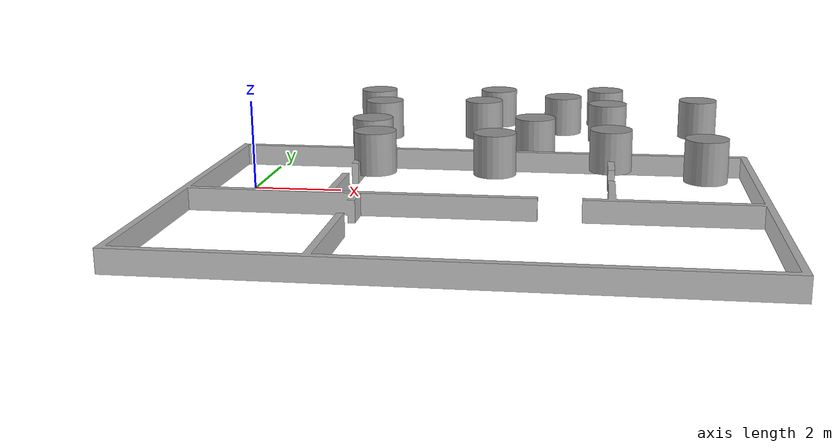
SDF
<sdf version="1.7">
 <world name="default">
  <light name="sun" type="directional">
   <pose>0 0 10 0 -0 0</pose>
   <diffuse>0.8 0.8 0.8 1</diffuse>
   <specular>0.2 0.2 0.2 1</specular>
   <attenuation>
    <range>1000</range>
    <constant>0.9</constant>
    <linear>0.01</linear>
    <quadratic>0.001</quadratic>
   </attenuation>
   <direction>-0.5 0.1 -0.9</direction>
   <spot><inner_angle>0</inner_angle><outer_angle>0</outer_angle><falloff>0</falloff></spot>
  </light>
  <model name="house">
   <frame name="house::__model__" attached_to="house::body">
    <pose relative_to="__model__">0 0 0 0 -0 0</pose>
   </frame>
   <static>1</static>
   <link name="house::body">
    <visual name="visual">
     <geometry><mesh><uri>file://models/house/meshes/house.dae</uri></mesh></geometry>
    </visual>
    <collision name="collision">
     <geometry><mesh><uri>file://models/house/meshes/house.dae</uri></mesh></geometry>
    </collision>
    <pose relative_to="house::__model__">0 0 0 0 -0 0</pose>
   </link>
   <pose>-1 -6 0 0 0 0</pose>
  </model>
  <gravity>0 0 -9.8</gravity>
  <magnetic_field>6e-06 2.3e-05 -4.2e-05</magnetic_field>
  <atmosphere type="adiabatic"/>
  <physics type="ode">
   <max_step_size>0.001</max_step_size>
   <real_time_factor>1</real_time_factor>
   <real_time_update_rate>1000</real_time_update_rate>
  </physics>
  <scene><ambient>0.4 0.4 0.4 1</ambient><background>0.7 0.7 0.7 1</background><shadows>1</shadows></scene>
  <spherical_coordinates>
   <surface_model>EARTH_WGS84</surface_model>
   <latitude_deg>0</latitude_deg>
   <longitude_deg>0</longitude_deg>
   <elevation>0</elevation>
   <heading_deg>0</heading_deg>
  </spherical_coordinates>
  <model name="unit_cylinder">
   <pose>4.96512 7.06192 0.65248 0 -0 7e-06</pose>
   <link name="link">
    <inertial>
     <mass>1</mass>
     <inertia><ixx>0.145833</ixx><ixy>0</ixy><ixz>0</ixz><iyy>0.145833</iyy><iyz>0</iyz><izz>0.125</izz></inertia>
    </inertial>
    <collision name="collision">
     <geometry><cylinder><radius>0.5</radius><length>1</length></cylinder></geometry>
    </collision>
    <visual name="visual">
     <geometry><cylinder><radius>0.5</radius><length>1</length></cylinder></geometry>
     <material>
      <script><name>Gazebo/Grey</name><uri>file://media/materials/scripts/gazebo.material</uri></script>
     </material>
    </visual>
   </link>
  </model>
  <model name="unit_cylinder_0">
   <pose>6.81801 6.17154 0.65248 0 -0 4.6e-05</pose>
   <link name="link">
    <inertial>
     <mass>1</mass>
     <inertia><ixx>0.145833</ixx><ixy>0</ixy><ixz>0</ixz><iyy>0.145833</iyy><iyz>0</iyz><izz>0.125</izz></inertia>
    </inertial>
    <collision name="collision">
     <geometry><cylinder><radius>0.5</radius><length>1</length></cylinder></geometry>
    </collision>
    <visual name="visual">
     <geometry><cylinder><radius>0.5</radius><length>1</length></cylinder></geometry>
     <material>
      <script><name>Gazebo/Grey</name><uri>file://media/materials/scripts/gazebo.material</uri></script>
     </material>
    </visual>
   </link>
  </model>
  <model name="unit_cylinder_1">
   <pose>8.09275 1.95874 0.652476 -5e-06 1e-06 4.5e-05</pose>
   <link name="link">
    <inertial>
     <mass>1</mass>
     <inertia><ixx>0.145833</ixx><ixy>0</ixy><ixz>0</ixz><iyy>0.145833</iyy><iyz>0</iyz><izz>0.125</izz></inertia>
    </inertial>
    <collision name="collision">
     <geometry><cylinder><radius>0.5</radius><length>1</length></cylinder></geometry>
    </collision>
    <visual name="visual">
     <geometry><cylinder><radius>0.5</radius><length>1</length></cylinder></geometry>
     <material>
      <script><name>Gazebo/Grey</name><uri>file://media/materials/scripts/gazebo.material</uri></script>
     </material>
    </visual>
   </link>
  </model>
  <model name="unit_cylinder_2">
   <pose>2.19671 2.73045 0.652476 -2e-06 4e-06 0</pose>
   <link name="link">
    <inertial>
     <mass>1</mass>
     <inertia><ixx>0.145833</ixx><ixy>0</ixy><ixz>0</ixz><iyy>0.145833</iyy><iyz>0</iyz><izz>0.125</izz></inertia>
    </inertial>
    <collision name="collision">
     <geometry><cylinder><radius>0.5</radius><length>1</length></cylinder></geometry>
    </collision>
    <visual name="visual">
     <geometry><cylinder><radius>0.5</radius><length>1</length></cylinder></geometry>
     <material>
      <script><name>Gazebo/Grey</name><uri>file://media/materials/scripts/gazebo.material</uri></script>
     </material>
    </visual>
   </link>
  </model>
  <model name="unit_cylinder_3">
   <pose>5.39309 1.29343 0.652477 7e-06 1e-06 9e-06</pose>
   <link name="link">
    <inertial>
     <mass>1</mass>
     <inertia><ixx>0.145833</ixx><ixy>0</ixy><ixz>0</ixz><iyy>0.145833</iyy><iyz>0</iyz><izz>0.125</izz></inertia>
    </inertial>
    <collision name="collision">
     <geometry><cylinder><radius>0.5</radius><length>1</length></cylinder></geometry>
    </collision>
    <visual name="visual">
     <geometry><cylinder><radius>0.5</radius><length>1</length></cylinder></geometry>
     <material>
      <script><name>Gazebo/Grey</name><uri>file://media/materials/scripts/gazebo.material</uri></script>
     </material>
    </visual>
   </link>
  </model>
  <model name="unit_cylinder_4">
   <pose>6.22384 3.17259 0.652472 -2e-06 -2e-06 0.008474</pose>
   <link name="link">
    <inertial>
     <mass>1</mass>
     <inertia><ixx>0.145833</ixx><ixy>0</ixy><ixz>0</ixz><iyy>0.145833</iyy><iyz>0</iyz><izz>0.125</izz></inertia>
    </inertial>
    <collision name="collision">
     <geometry><cylinder><radius>0.5</radius><length>1</length></cylinder></geometry>
    </collision>
    <visual name="visual">
     <geometry><cylinder><radius>0.5</radius><length>1</length></cylinder></geometry>
     <material>
      <script><name>Gazebo/Grey</name><uri>file://media/materials/scripts/gazebo.material</uri></script>
     </material>
    </visual>
   </link>
  </model>
  <model name="unit_cylinder_5">
   <pose>10.4511 5.98961 0.65248 -6e-06 3e-06 8e-06</pose>
   <link name="link">
    <inertial>
     <mass>1</mass>
     <inertia><ixx>0.145833</ixx><ixy>0</ixy><ixz>0</ixz><iyy>0.145833</iyy><iyz>0</iyz><izz>0.125</izz></inertia>
    </inertial>
    <collision name="collision">
     <geometry><cylinder><radius>0.5</radius><length>1</length></cylinder></geometry>
    </collision>
    <visual name="visual">
     <geometry><cylinder><radius>0.5</radius><length>1</length></cylinder></geometry>
     <material>
      <script><name>Gazebo/Grey</name><uri>file://media/materials/scripts/gazebo.material</uri></script>
     </material>
    </visual>
   </link>
  </model>
  <model name="unit_cylinder_6">
   <pose>4.70946 5.37788 0.652478 -4e-06 3e-06 0.03145</pose>
   <link name="link">
    <inertial>
     <mass>1</mass>
     <inertia><ixx>0.145833</ixx><ixy>0</ixy><ixz>0</ixz><iyy>0.145833</iyy><iyz>0</iyz><izz>0.125</izz></inertia>
    </inertial>
    <collision name="collision">
     <geometry><cylinder><radius>0.5</radius><length>1</length></cylinder></geometry>
    </collision>
    <visual name="visual">
     <geometry><cylinder><radius>0.5</radius><length>1</length></cylinder></geometry>
     <material>
      <script><name>Gazebo/Grey</name><uri>file://media/materials/scripts/gazebo.material</uri></script>
     </material>
    </visual>
   </link>
  </model>
  <model name="unit_cylinder_7">
   <pose>2.03378 5.07185 0.65248 0 0 -9.2e-05</pose>
   <link name="link">
    <inertial>
     <mass>1</mass>
     <inertia><ixx>0.145833</ixx><ixy>0</ixy><ixz>0</ixz><iyy>0.145833</iyy><iyz>0</iyz><izz>0.125</izz></inertia>
    </inertial>
    <collision name="collision">
     <geometry><cylinder><radius>0.5</radius><length>1</length></cylinder></geometry>
    </collision>
    <visual name="visual">
     <geometry><cylinder><radius>0.5</radius><length>1</length></cylinder></geometry>
     <material>
      <script><name>Gazebo/Grey</name><uri>file://media/materials/scripts/gazebo.material</uri></script>
     </material>
    </visual>
   </link>
  </model>
  <model name="unit_cylinder_8">
   <pose>1.55764 6.73277 0.652471 0 -0 2e-06</pose>
   <link name="link">
    <inertial>
     <mass>1</mass>
     <inertia><ixx>0.145833</ixx><ixy>0</ixy><ixz>0</ixz><iyy>0.145833</iyy><iyz>0</iyz><izz>0.125</izz></inertia>
    </inertial>
    <collision name="collision">
     <geometry><cylinder><radius>0.5</radius><length>1</length></cylinder></geometry>
    </collision>
    <visual name="visual">
     <geometry><cylinder><radius>0.5</radius><length>1</length></cylinder></geometry>
     <material>
      <script><name>Gazebo/Grey</name><uri>file://media/materials/scripts/gazebo.material</uri></script>
     </material>
    </visual>
   </link>
  </model>
  <model name="unit_cylinder_9">
   <pose>2.56704 1.20351 0.65248 -1e-06 0 0.026904</pose>
   <link name="link">
    <inertial>
     <mass>1</mass>
     <inertia><ixx>0.145833</ixx><ixy>0</ixy><ixz>0</ixz><iyy>0.145833</iyy><iyz>0</iyz><izz>0.125</izz></inertia>
    </inertial>
    <collision name="collision">
     <geometry><cylinder><radius>0.5</radius><length>1</length></cylinder></geometry>
    </collision>
    <visual name="visual">
     <geometry><cylinder><radius>0.5</radius><length>1</length></cylinder></geometry>
     <material>
      <script><name>Gazebo/Grey</name><uri>file://media/materials/scripts/gazebo.material</uri></script>
     </material>
    </visual>
   </link>
  </model>
  <model name="unit_cylinder_10">
   <pose>10.2529 1.18298 0.652475 0 0 -1.7e-05</pose>
   <link name="link">
    <inertial>
     <mass>1</mass>
     <inertia><ixx>0.145833</ixx><ixy>0</ixy><ixz>0</ixz><iyy>0.145833</iyy><iyz>0</iyz><izz>0.125</izz></inertia>
    </inertial>
    <collision name="collision">
     <geometry><cylinder><radius>0.5</radius><length>1</length></cylinder></geometry>
    </collision>
    <visual name="visual">
     <geometry><cylinder><radius>0.5</radius><length>1</length></cylinder></geometry>
     <material>
      <script><name>Gazebo/Grey</name><uri>file://media/materials/scripts/gazebo.material</uri></script>
     </material>
    </visual>
   </link>
  </model>
  <model name="unit_cylinder_11">
   <pose>7.97335 7.29347 0.652478 -5e-06 1e-06 -0.002404</pose>
   <link name="link">
    <inertial>
     <mass>1</mass>
     <inertia><ixx>0.145833</ixx><ixy>0</ixy><ixz>0</ixz><iyy>0.145833</iyy><iyz>0</iyz><izz>0.125</izz></inertia>
    </inertial>
    <collision name="collision">
     <geometry><cylinder><radius>0.5</radius><length>1</length></cylinder></geometry>
    </collision>
    <visual name="visual">
     <geometry><cylinder><radius>0.5</radius><length>1</length></cylinder></geometry>
     <material>
      <script><name>Gazebo/Grey</name><uri>file://media/materials/scripts/gazebo.material</uri></script>
     </material>
    </visual>
   </link>
  </model>
  <model name="unit_cylinder_12">
   <pose>8.02918 5.22156 0.652477 2e-06 1e-06 -0.002678</pose>
   <link name="link">
    <inertial>
     <mass>1</mass>
     <inertia><ixx>0.145833</ixx><ixy>0</ixy><ixz>0</ixz><iyy>0.145833</iyy><iyz>0</iyz><izz>0.125</izz></inertia>
    </inertial>
    <collision name="collision">
     <geometry><cylinder><radius>0.5</radius><length>1</length></cylinder></geometry>
    </collision>
    <visual name="visual">
     <geometry><cylinder><radius>0.5</radius><length>1</length></cylinder></geometry>
     <material>
      <script><name>Gazebo/Grey</name><uri>file://media/materials/scripts/gazebo.material</uri></script>
     </material>
    </visual>
   </link>
  </model>
 </world>
</sdf>
